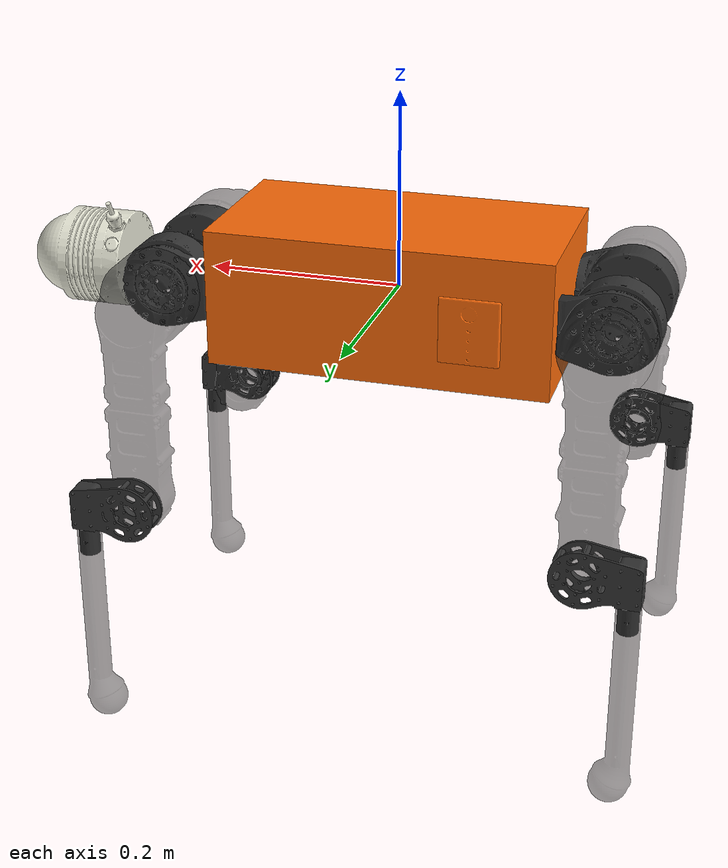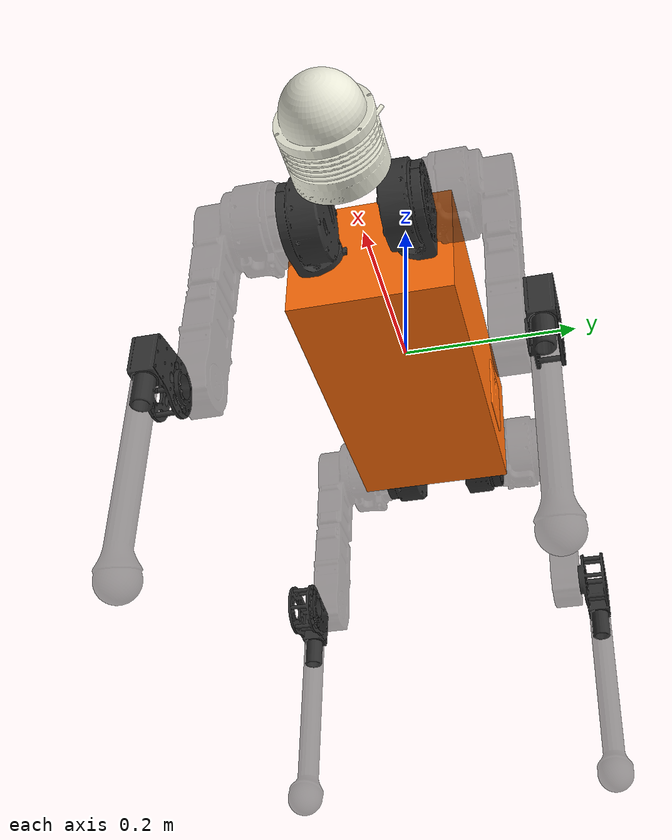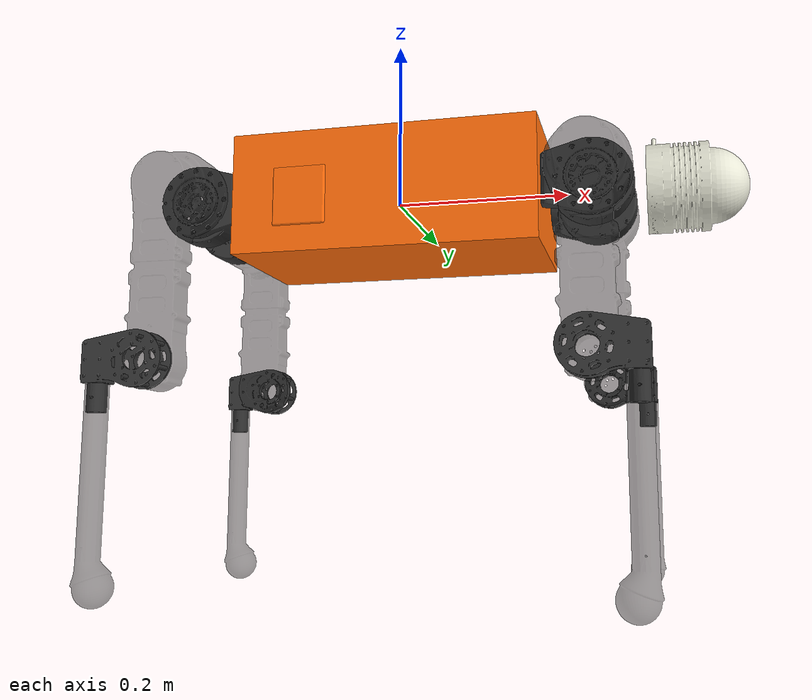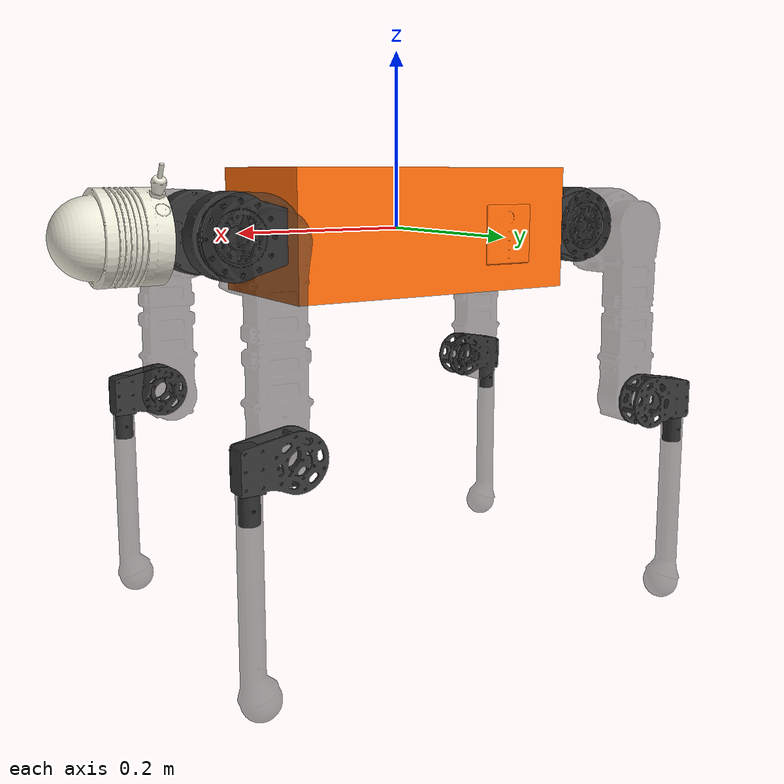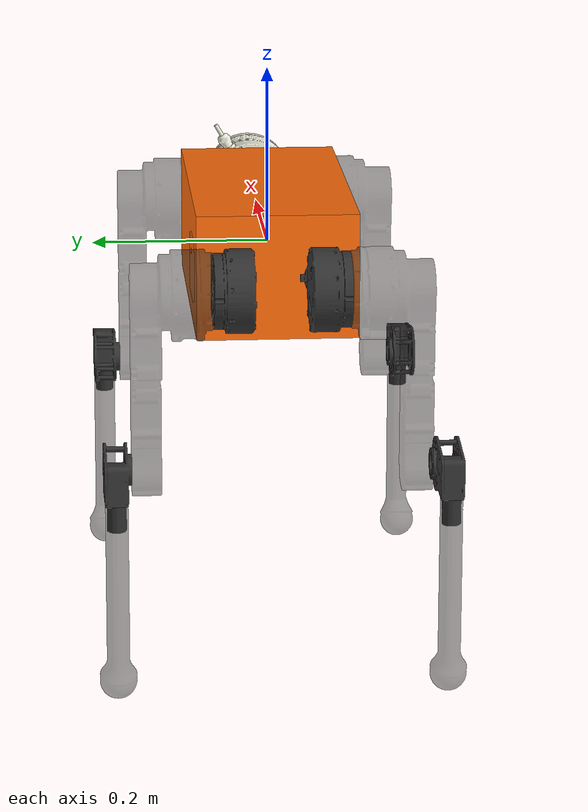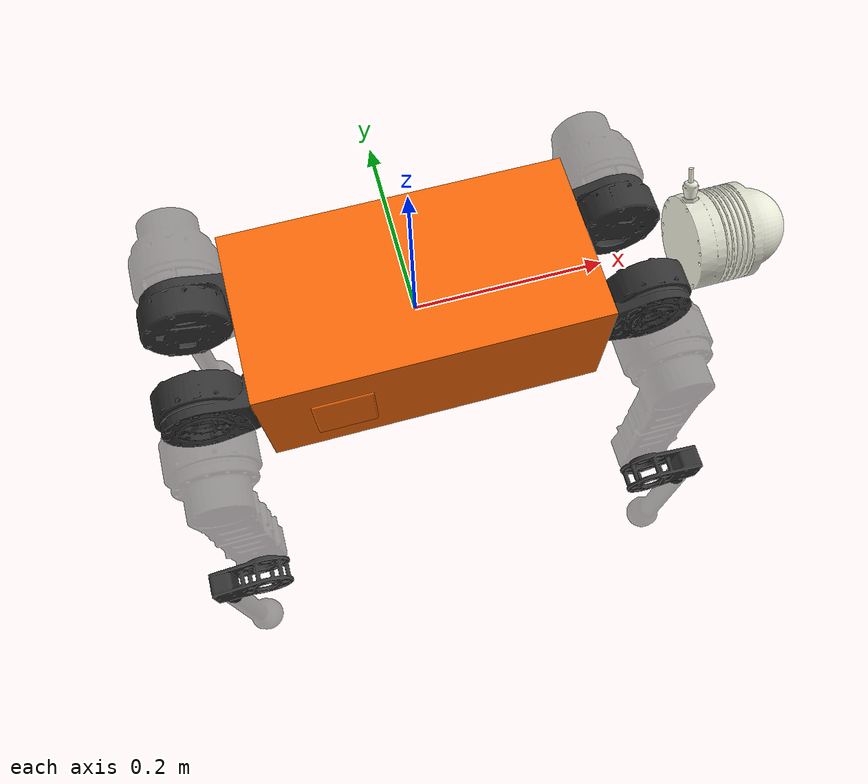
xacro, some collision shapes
<?xml version="1.0"?>

<robot xmlns:xacro="http://www.ros.org/wiki/xacro" name="robot">

    <xacro:arg name="robot_type" default="freeAny"/>

    <xacro:include filename="$(find freeAny_description)/common/materials.xacro"/>
    <xacro:include filename="$(find freeAny_description)/common/leg.xacro"/>
    <xacro:include filename="$(find freeAny_description)/common/gazebo.xacro"/>
    <xacro:include filename="$(find freeAny_description)/common/imu.xacro"/>
    <xacro:include filename="$(find freeAny_description)/common/BP_lidar.xacro"/>
    <xacro:include filename="$(find freeAny_description)/common/camera.xacro"/>

    <xacro:include filename="$(find freeAny_description)/urdf/const.xacro"/>

    <link name="base">
        <visual>
            <origin rpy="0 0 0" xyz="0 0 0"/>
            <geometry>
                <mesh filename="package://freeAny_description/meshes/base.STL" scale="1 1 1"/>
            </geometry>
            <material name = "orange" />
        </visual>
        <collision>
            <origin rpy="0 0 0" xyz="0 0 0"/>
            <geometry>
                <box size="${trunk_length} ${trunk_width} ${trunk_height}"/>
            </geometry>
        </collision>
        <inertial>
            <origin rpy="0 0 0" xyz="${trunk_com_x} ${trunk_com_y} ${trunk_com_z}"/>
            <mass value="${trunk_mass}"/>
            <inertia
                    ixx="${trunk_ixx}" ixy="${trunk_ixy}" ixz="${trunk_ixz}"
                    iyy="${trunk_iyy}" iyz="${trunk_iyz}"
                    izz="${trunk_izz}"/>
        </inertial>
    </link>

    <joint
        name="base_to_battery"
        type="fixed">
        <origin xyz="-0.0945 0 -0.006" rpy="0 0 0" />
        <parent link="base" />
        <child link="battery" />
        <axis xyz="0 0 0" />
    </joint>
    <gazebo reference="base_to_battery">
            <disableFixedJointLumping>true</disableFixedJointLumping>
    </gazebo>
    <link name="battery">
        <inertial>
        <origin xyz="0 4.0915E-05 3.0102E-05" rpy="0 0 0" />
        <mass value="1.47" />
        <inertia
            ixx="0.004712212" ixy="-1.6E-08" ixz="-8.0E-09"
            iyy="0.001037398" iyz="3.622E-06"
            izz="0.004615705" />
        </inertial>
        <visual>
        <origin xyz="0 0 0" rpy="0 0 0" />
        <geometry>
            <mesh
            filename="package://freeAny_description/meshes/battery.STL" />
        </geometry>
        <material name="orange"/>
        </visual>
    </link>

    <xacro:IMU connected_to="base" imu_name="yesense_imu" xyz="0.12095 0 -0.0335" rpy="0. 0. 0."/>
    <xacro:LiDAR connected_to="base" lidar_name="BP_lidar" xyz="0.38227 0 0" rpy="-1.5708 1.0472 -1.5708"/>
    <xacro:Camera connected_to="base" camera_name="realsense_camera" xyz="0.4 0 0.15" rpy="0 0.6 0"/>

    <gazebo reference="camera_rgb_frame">
            <sensor type="depth" name="realsense_R200">
            <always_on>true</always_on>
            <visualize>false</visualize>
            <camera>
                <horizontal_fov>1.3439</horizontal_fov>
                <image>
                    <width>1920</width>
                    <height>1080</height>
                    <format>R8G8B8</format>
                </image>
                <depth_camera></depth_camera>
                <clip>
                    <near>0.03</near>
                    <far>100</far>
                </clip>
            </camera>
            <plugin name="camera_controller" filename="libgazebo_ros_openni_kinect.so">
                <baseline>0.2</baseline>
                <alwaysOn>true</alwaysOn>
                <updateRate>30.0</updateRate>
                <cameraName>camera</cameraName>
                <frameName>camera_rgb_optical_frame</frameName>
                <imageTopicName>rgb/image_raw</imageTopicName>
                <depthImageTopicName>depth/image_raw</depthImageTopicName>
                <pointCloudTopicName>depth/points</pointCloudTopicName>
                <cameraInfoTopicName>rgb/camera_info</cameraInfoTopicName>
                <depthImageCameraInfoTopicName>depth/camera_info</depthImageCameraInfoTopicName>
                <pointCloudCutoff>0.4</pointCloudCutoff>
                    <hackBaseline>0.07</hackBaseline>
                    <distortionK1>0.0</distortionK1>
                    <distortionK2>0.0</distortionK2>
                    <distortionK3>0.0</distortionK3>
                    <distortionT1>0.0</distortionT1>
                    <distortionT2>0.0</distortionT2>
                <CxPrime>0.0</CxPrime>
                <Cx>0.0</Cx>
                <Cy>0.0</Cy>
                <focalLength>0</focalLength>
                <hackBaseline>0</hackBaseline>
            </plugin>
            </sensor>
        </gazebo>

    <!-- lr_val = 1(left)/-1(right) fh_val = 1(front)/-1(hind) -->

    <xacro:leg prefix="LF" lr_val="1" left_right="True" fh_val="1" front_hind="True">
        <origin rpy="0 0 0" xyz="${leg_offset_x} ${leg_offset_y} 0"/>
    </xacro:leg>

    <xacro:leg prefix="RF" lr_val="-1" left_right="False" fh_val="1" front_hind="True">
        <origin rpy="0 0 0" xyz="${leg_offset_x} ${-leg_offset_y} 0"/>
    </xacro:leg>

    <xacro:leg prefix="LH" lr_val="1" left_right="True" fh_val="-1" front_hind="False">
        <origin rpy="0 0 0" xyz="${-leg_offset_x} ${leg_offset_y} 0"/>
    </xacro:leg>

    <xacro:leg prefix="RH" lr_val="-1" left_right="False" fh_val="-1" front_hind="False">
        <origin rpy="0 0 0" xyz="${-leg_offset_x} ${-leg_offset_y} 0"/>
    </xacro:leg>

</robot>

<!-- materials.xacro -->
<robot>

    <material name="black">
        <color rgba="0.0 0.0 0.0 1.0"/>
    </material>

    <material name="blue">
        <color rgba="0.0 0.0 0.8 1.0"/>
    </material>

    <material name="green">
        <color rgba="0.0 0.8 0.0 1.0"/>
    </material>

    <material name="grey">
        <color rgba="0.2 0.2 0.2 1.0"/>
    </material>

    <material name="grey_alpha">
        <color rgba="0.2 0.2 0.2 0.5"/>
    </material>

    <material name="silver">
        <color rgba="${233/255} ${233/255} ${216/255} 1.0"/>
    </material>

    <material name="orange">
        <color rgba="${255/255} ${108/255} ${10/255} 1.0"/>
    </material>

    <material name="orange_alpha">
        <color rgba="${255/255} ${108/255} ${10/255} 0.85"/>
    </material>

    <material name="brown">
        <color rgba="${222/255} ${207/255} ${195/255} 1.0"/>
    </material>

    <material name="red">
        <color rgba="0.8 0.0 0.0 1.0"/>
    </material>

    <material name="white">
        <color rgba="1.0 1.0 1.0 1.0"/>
    </material>

</robot>

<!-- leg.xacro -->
<robot xmlns:xacro="http://www.ros.org/wiki/xacro">

    <xacro:include filename="$(find freeAny_description)/common/transmission.xacro"/>
    <!-- lr_val = 1(left)/-1(right) fh_val = 1(front)/-1(hind) -->
    <xacro:macro name="leg" params="prefix lr_val left_right fh_val front_hind *origin">

        <joint name="${prefix}_HAA" type="revolute">
            <xacro:insert_block name="origin"/>
            <parent link="base"/>
            <child link="${prefix}_HIP"/>
            <axis xyz="1 0 0"/>
            <dynamics damping="${damping}" friction="${friction}"/>
            <xacro:if value="${(left_right == True)}">
                <limit effort="${hip_torque_max}" velocity="${hip_velocity_max}" lower="${hip_min}"
                       upper="${hip_max}"/>
            </xacro:if>
            <xacro:if value="${(left_right == False)}">
                <limit effort="${hip_torque_max}" velocity="${hip_velocity_max}" lower="${-hip_max}"
                       upper="${-hip_min}"/>
            </xacro:if>
        </joint>

        <link name="${prefix}_HIP">
            <visual>
                <xacro:if value="${(left_right == True) and (front_hind == True)}">
                    <origin rpy="0 0 0" xyz="0 0 0"/>
                </xacro:if>
                <xacro:if value="${(left_right == False) and (front_hind == True)}">
                    <origin rpy="${pi} 0 0" xyz="0 0 0"/>
                </xacro:if>
                <xacro:if value="${(left_right == True) and (front_hind == False)}">
                    <origin rpy="0 ${pi} 0" xyz="0 0 0"/>
                </xacro:if>
                <xacro:if value="${(left_right == False) and (front_hind == False)}">
                    <origin rpy="0 0 ${pi}" xyz="0 0 0"/>
                </xacro:if>
                <geometry>
                    <mesh filename="package://freeAny_description/meshes/HIP.STL" scale="1 1 1"/>
                </geometry>
                <material name="grey"/>
            </visual>
            <collision>
                <origin rpy="${pi/2.0} 0 0" xyz="0.0541 0 0"/>
                <geometry>
                    <cylinder length="${hip_length}" radius="${hip_radius}"/>
                </geometry>
            </collision>
            <inertial>
                <origin rpy="0 0 0" xyz="${fh_val*hip_com_x} ${lr_val*hip_com_y} ${hip_com_z}"/>
                <mass value="${hip_mass}"/>
                <inertia
                    ixx="${hip_ixx}" ixy="${fh_val*hip_ixy*lr_val}" ixz="${fh_val*hip_ixz}"
                    iyy="${hip_iyy}" iyz="${lr_val*hip_iyz}"
                    izz="${hip_izz}"/>
            </inertial>
        </link>

        <joint name="${prefix}_HIPFix" type="fixed">
            <origin rpy="0 0 0" xyz="${fh_val*0.08} ${lr_val*0.04} 0"/>
            <parent link="${prefix}_HIP"/>
            <child link="${prefix}_HIPFixed"/>
        </joint>

        <link name="${prefix}_HIPFixed">
            <inertial>
                <origin rpy="0 0 0" xyz="0 0 0"/>
                <mass value="0.000001"/>
                <inertia
                    ixx="0.00000001" ixy="0" ixz="0"
                    iyy="0.00000001" iyz="0"
                    izz="0.00000001"/>
            </inertial>
        </link>

        <joint name="${prefix}_HFE" type="revolute">
            <origin rpy="0 0 ${pi/2.0}" xyz="${fh_val*thigh_x_offset} ${lr_val*thigh_y_offset} 0"/>
            <parent link="${prefix}_HIP"/>
            <child link="${prefix}_THIGH"/>
            <axis xyz="1 0 0"/>
            <dynamics damping="${damping}" friction="${friction}"/>
            <xacro:if value="${(left_right == True)}">
                <limit effort="${thigh_torque_max}" velocity="${thigh_velocity_max}" lower="${thigh_min}"
                       upper="${thigh_max}"/>
            </xacro:if>
            <xacro:if value="${(left_right == False)}">
                <limit effort="${hip_torque_max}" velocity="${hip_velocity_max}" lower="${-thigh_max}"
                       upper="${-thigh_min}"/>
            </xacro:if>
        </joint>

        <link name="${prefix}_THIGH">
            <visual>
                <xacro:if value="${(left_right == True)}">
                    <origin rpy="0 0 0" xyz="0 0 0"/>
                </xacro:if>
                <xacro:if value="${(left_right == False)}">
                    <origin rpy="0 0 ${pi}" xyz="0 0 0"/>
                </xacro:if>
                <geometry>
                    <mesh filename="package://freeAny_description/meshes/thigh.STL" scale="1 1 1"/>
                </geometry>
                <material name="grey_alpha"/>
            </visual>
            <collision>
                <origin rpy="0 ${pi/2.0} 0" xyz="${-lr_val*0.01} 0 0"/>
                <geometry>
                    <cylinder length="${thigh_shoulder_length}" radius="${thigh_shoulder_radius}"/>
                </geometry>
            </collision>
            <collision>
                <origin rpy="0 0 0" xyz="0 0 ${-thigh_length/2.0}"/>
                <geometry>
                    <box size="${thigh_height} ${thigh_width} ${thigh_length}"/>
                </geometry>
            </collision>
            <inertial>
                <origin rpy="0 0 0" xyz="${lr_val*thigh_com_x} ${lr_val*thigh_com_y} ${thigh_com_z}"/>
                <mass value="${thigh_mass}"/>
                <inertia
                        ixx="${thigh_ixx}" ixy="${thigh_ixy}" ixz="${thigh_ixz*lr_val}"
                        iyy="${thigh_iyy}" iyz="${thigh_iyz*lr_val}"
                        izz="${thigh_izz}"/>
            </inertial>
        </link>

        <joint name="${prefix}_KFE" type="revolute">
            <origin rpy="0 0 0" xyz="${lr_val*shank_x_offset} 0 ${-thigh_length}"/>
            <parent link="${prefix}_THIGH"/>
            <child link="${prefix}_SHANK"/>
            <axis xyz="1 0 0"/>
            <dynamics damping="${damping}" friction="${friction}"/>
            <limit effort="${shank_torque_max}" velocity="${shank_velocity_max}" lower="${shank_min}" upper="${shank_max}"/>
        </joint>

        <link name="${prefix}_SHANK">
            <visual>
                <xacro:if value="${(left_right == True) and (front_hind == True)}">
                    <origin rpy="0 0 0" xyz="0 0 0"/>
                    <geometry>
                        <mesh filename="package://freeAny_description/meshes/shank_Left.STL" scale="1 1 1"/>
                    </geometry>
                </xacro:if>
                <xacro:if value="${(left_right == False) and (front_hind == False)}">
                    <origin rpy="0 0 ${pi}" xyz="0 0 0"/>
                    <geometry>
                        <mesh filename="package://freeAny_description/meshes/shank_Left.STL" scale="1 1 1"/>
                    </geometry>
                </xacro:if>
                <xacro:if value="${(left_right == False) and (front_hind == True)}">
                    <origin rpy="0 0 0" xyz="0 0 0"/>
                    <geometry>
                        <mesh filename="package://freeAny_description/meshes/shank_Right.STL" scale="1 1 1"/>
                    </geometry>
                </xacro:if>
                <xacro:if value="${(left_right == True) and (front_hind == False)}">
                    <origin rpy="0 0 ${pi}" xyz="0 0 0"/>
                    <geometry>
                        <mesh filename="package://freeAny_description/meshes/shank_Right.STL" scale="1 1 1"/>
                    </geometry>
                </xacro:if>
                <material name="grey"/>
            </visual>
            <collision>
                <origin rpy="0 0 0" xyz="0 ${-fh_val*0.048} 0"/>
                <geometry>
                    <box size="${shank_length} ${shank_width} ${shank_height}"/>
                </geometry>
            </collision>
            <collision>
                <origin rpy="0 ${pi/2} 0" xyz="0 0 0"/>
                <geometry>
                    <cylinder length="${shank_thickness}" radius="${shank_radius}"/>
                </geometry>
            </collision>
            <inertial>
                <origin rpy="0 0 0" xyz="${lr_val*shank_com_x} ${fh_val*shank_com_y} ${shank_com_z}"/>
                <mass value="${shank_mass}"/>
                <inertia
                        ixx="${shank_ixx}" ixy="${lr_val*fh_val*shank_ixy}" ixz="${lr_val*shank_ixz}"
                        iyy="${shank_iyy}" iyz="${fh_val*shank_iyz}"
                        izz="${shank_izz}"/>
            </inertial>
        </link>

        <joint name="shank_to_foot_${prefix}" type="fixed">
            <origin rpy="0 0 ${-pi/2}" xyz="0 ${-(fh_val*0.031301)} -0.24819"/>
            <parent link="${prefix}_SHANK"/>
            <child link="${prefix}_FOOT"/>
        </joint>

        <link name="${prefix}_FOOT">
            <visual>
                <xacro:if value="${(front_hind == True)}">
                    <origin rpy="0 0 0" xyz="0 0 0"/>
                </xacro:if>
                <xacro:if value="${(front_hind == False)}">
                    <origin rpy="0 0 ${pi}" xyz="0 0 0"/>
                </xacro:if>
                <geometry>
                        <mesh filename="package://freeAny_description/meshes/foot.STL" scale="1 1 1"/>
                </geometry>
                <material name="grey_alpha"/>
            </visual>
            <collision>
                <origin rpy="0 0 0" xyz="${0.008*fh_val} 0 0.017"/>
                <geometry>
                    <sphere radius="${foot_radius}"/>
                </geometry>
            </collision>
            <collision>
                <origin rpy="0 0 0" xyz="${0.016*fh_val} 0 ${foot_length*0.625}"/>
                <geometry>
                    <cylinder length="${foot_length}" radius="${foot_radius*0.6}"/>
                </geometry>
            </collision>
            <inertial>
                <origin rpy="0 0 0" xyz="${fh_val*foot_com_x} ${foot_com_y} ${foot_com_z}"/>
                <mass value="${foot_mass}"/>
                <inertia
                        ixx="${foot_ixx}" ixy="${fh_val*foot_ixy}" ixz="${fh_val*foot_ixz}"
                        iyy="${foot_iyy}" iyz="${foot_iyz}"
                        izz="${foot_izz}"/>
            </inertial>
        </link>

        <gazebo reference="shank_to_foot_${prefix}">
            <disableFixedJointLumping>true</disableFixedJointLumping>
        </gazebo>

        <xacro:leg_transmission name="${prefix}"/>
    </xacro:macro>
</robot>

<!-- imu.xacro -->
<robot xmlns:xacro="http://www.ros.org/wiki/xacro" name="imu">
    <xacro:macro name="IMU" params="connected_to imu_name xyz:='0 0 0' rpy:='0 0 0' ">
        <!-- Imu is fixed to the base link -->
        <joint name="${imu_name}_joint" type="fixed">
            <origin xyz="${xyz}" rpy="${rpy}"/>
            <parent link="${connected_to}"/>
            <child link="${imu_name}"/>
        </joint>
        <!-- Imu link -->
        <link name="${imu_name}">
            <inertial>
                <mass value="0.03"/>
                <origin xyz="0 0 -0.0072335" rpy="0 0 0" />
                <inertia ixx="4.013E-06" ixy="0" ixz="-1.5E-08" iyy="6.158E-06" iyz="-2.0E-09" izz="6.061E-06" />
            </inertial>
            <visual>
                <origin rpy="0 0 0" xyz="0 0 0"/>
                <geometry>
                    <mesh filename="package://freeAny_description/meshes/IMU.STL" />
                </geometry>
            </visual>
            <material name="orange">
                <color rgba="255 108 10 255"/>
            </material>
        </link>
        <gazebo reference="${imu_name}">
            <material>Gazebo/Orange</material>
        </gazebo>
        <gazebo reference="${imu_name}_joint">
            <disableFixedJointLumping>true</disableFixedJointLumping>
        </gazebo>
    </xacro:macro>
</robot>

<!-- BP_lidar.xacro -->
<robot xmlns:xacro="http://www.ros.org/wiki/xacro" name="laser_ldiar">
    <xacro:macro name="LiDAR" params="connected_to lidar_name xyz:='0 0 0' rpy:='0 0 0' ">
        <!-- lidar is fixed to the base link -->
        <joint name="base_to_${lidar_name}_joint" type="fixed">
            <origin xyz="${xyz}" rpy="${rpy}"/>
            <parent link="${connected_to}"/>
            <child link="${lidar_name}"/>
        </joint>
        <!-- lidar link -->
        <link name="${lidar_name}">
            <inertial>
                <mass value="1.0"/>
                <origin xyz="-0.00092658 3.0E-05 -0.058804" rpy="0 0 0" />
                <inertia ixx="0.005077876" ixy="1.493E-06" ixz="7.8943E-05" iyy="0.005133860" iyz="-2.922E-06" izz="0.001777821" />
            </inertial>
            <visual>
                <origin rpy="0 0 0" xyz="0 0 0"/>
                <geometry>
                    <mesh filename="package://freeAny_description/meshes/BP_lidar.STL" />
                </geometry>
                <material name = "silver" />
            </visual>
        </link>

        <gazebo reference="base_to_${lidar_name}_joint">
            <disableFixedJointLumping>true</disableFixedJointLumping>
        </gazebo>
    </xacro:macro>
</robot>

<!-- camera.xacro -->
<robot xmlns:xacro="http://www.ros.org/wiki/xacro" name="camera_freeany">
    <xacro:macro name="Camera" params="connected_to camera_name xyz:='0 0 0' rpy:='0 0 0' ">
        <!-- lidar is fixed to the base link -->

        <joint name="base_to_${camera_name}_joint" type="fixed">
            <origin xyz="${xyz}" rpy="${rpy}"/>
            <parent link="${connected_to}"/>
            <child link="${camera_name}"/>
        </joint>
        <!-- lidar link -->
        <link name="${camera_name}">
            <inertial>
                <mass value="0.01"/>
                <origin xyz="0 0 0" rpy="0 0 0" />
                <inertia ixx="0.0000001" ixy="0" ixz="0" iyy="0.0000001" iyz="0" izz="0.0000001" />
            </inertial>

        </link>

         <joint name="camera_rgb_joint" type="fixed">
            <origin xyz="0.005 0.018 0.013" rpy="0 0 0"/>
            <parent link="${camera_name}"/>
            <child link="camera_rgb_frame"/>
        </joint>

        <link name="camera_rgb_frame">
            <inertial>
                <mass value="0.01"/>
                <origin xyz="0 0 0" rpy="0 0 0" />
                <inertia ixx="0.0000001" ixy="0" ixz="0" iyy="0.0000001" iyz="0" izz="0.0000001" />
            </inertial>
        </link>

        <joint name="camera_rgb_optical_joint" type="fixed">
            <origin xyz="0 0 0" rpy="-1.57 0 -1.57"/>
            <parent link="camera_rgb_frame"/>
            <child link="camera_rgb_optical_frame"/>
        </joint>
        <link name="camera_rgb_optical_frame"/>

        <joint name="camera_depth_joint" type="fixed">
            <origin xyz="0.005 0.028 0.013" rpy="0 0 0"/>
            <parent link="${camera_name}"/>
            <child link="camera_depth_frame"/>
        </joint>
        <link name="camera_depth_frame"/>

        <joint name="camera_depth_optical_joint" type="fixed">
            <origin xyz="0 0 0" rpy="-1.57 0 -1.57"/>
            <parent link="camera_depth_frame"/>
            <child link="camera_depth_optical_frame"/>
        </joint>
        <link name="camera_depth_optical_frame"/>

        <gazebo reference="base_to_${camera_name}_joint">
            <disableFixedJointLumping>true</disableFixedJointLumping>
        </gazebo>

    </xacro:macro>
</robot>

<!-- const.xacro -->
<robot xmlns:xacro="http://www.ros.org/wiki/xacro" name="freeAny_description">

    <!-- simplified collision value -->
    <xacro:property name="trunk_width" value="0.18"/>
    <xacro:property name="trunk_length" value="0.3504"/>
    <xacro:property name="trunk_height" value="0.14"/>

    <xacro:property name="hip_radius" value="0.046"/>
    <xacro:property name="hip_length" value="0.04"/>

    <xacro:property name="thigh_shoulder_radius" value="0.032"/>
    <xacro:property name="thigh_shoulder_length" value="0.041"/>
    <xacro:property name="thigh_width" value="0.048"/>
    <xacro:property name="thigh_height" value="0.032"/>

    <xacro:property name="shank_width"  value="0.02"/>
    <xacro:property name="shank_length" value="0.03"/>
    <xacro:property name="shank_height" value="0.045"/>
    <xacro:property name="shank_radius" value="0.029"/>
    <xacro:property name="shank_thickness" value="0.03"/>

    <xacro:property name="foot_length"   value="0.21"/>
    <xacro:property name="foot_radius" value="0.02"/>

    <xacro:property name="stick_radius" value="0.01"/>
    <xacro:property name="stick_length" value="0.2"/>

    <!-- kinematic value -->
    <xacro:property name="thigh_x_offset" value="0.0541"/>
    <xacro:property name="thigh_y_offset" value="0.09355"/>
    <xacro:property name="thigh_length"   value="0.2"/>
    <xacro:property name="shank_x_offset" value="0.034"/>

    <!-- leg offset from trunk center value -->
    <xacro:property name="leg_offset_x" value="0.1756"/>
    <xacro:property name="leg_offset_y" value="0.055"/>
    <xacro:property name="trunk_offset_z" value="0.01675"/>
    <xacro:property name="hip_offset" value="0.065"/>

    <!-- joint limits -->
    <xacro:property name="damping" value="0"/>
    <xacro:property name="friction" value="0"/>
    <xacro:property name="hip_max" value="${46*pi/180.0}"/>
    <xacro:property name="hip_min" value="${-46*pi/180.0}"/>
    <xacro:property name="hip_velocity_max" value="21"/>
    <xacro:property name="hip_torque_max" value="33.5"/>
    <xacro:property name="thigh_max" value="${240*pi/180.0}"/>
    <xacro:property name="thigh_min" value="${-80*pi/180.0}"/>
    <xacro:property name="thigh_velocity_max" value="21"/>
    <xacro:property name="thigh_torque_max" value="33.5"/>
    <xacro:property name="shank_max" value="${180*pi/180.0}"/>
    <xacro:property name="shank_min" value="${-180*pi/180.0}"/>
    <xacro:property name="shank_velocity_max" value="13"/>
    <xacro:property name="shank_torque_max" value="52"/>

    <!-- dynamics inertial value -->
    <!-- trunk -->
    <!--    base+imu+battery+lidar = 7.21Kg-->
    <xacro:property name="trunk_mass"  value="4.71"/>
    <xacro:property name="trunk_com_x" value="0.0036585"/>
    <xacro:property name="trunk_com_y" value="0.000"/>
    <xacro:property name="trunk_com_z" value="-0.0077332"/>
    <xacro:property name="trunk_ixx" value="0.02327755"/>
    <xacro:property name="trunk_ixy" value="0.000033511"/>
    <xacro:property name="trunk_ixz" value="0.000186233"/>
    <xacro:property name="trunk_iyy" value="0.126017746"/>
    <xacro:property name="trunk_iyz" value="-0.000014056"/>
    <xacro:property name="trunk_izz" value="0.133811568"/>

    <!-- hip (left front) -->
    <xacro:property name="hip_mass"  value="0.715"/>
    <xacro:property name="hip_com_x" value="0.042659"/>
    <xacro:property name="hip_com_y" value="0.0034843"/>
    <xacro:property name="hip_com_z" value="-0.00035303"/>
    <xacro:property name="hip_ixx" value="0.000546211"/>
    <xacro:property name="hip_ixy" value="0.000114344"/>
    <xacro:property name="hip_ixz" value="-1.0737E-05"/>
    <xacro:property name="hip_iyy" value="0.002324487"/>
    <xacro:property name="hip_iyz" value="3.2554E-05"/>
    <xacro:property name="hip_izz" value="0.002086762"/>

    <!-- thigh -->
    <xacro:property name="thigh_mass"  value="1.15"/>
    <xacro:property name="thigh_com_x" value="-0.018971"/>
    <xacro:property name="thigh_com_y" value="-0.000100"/>
    <xacro:property name="thigh_com_z" value="-0.072708"/>
    <xacro:property name="thigh_ixx" value="0.014724523"/>
    <xacro:property name="thigh_ixy" value="5.677E-06"/>
    <xacro:property name="thigh_ixz" value="6.2711E-05"/>
    <xacro:property name="thigh_iyy" value="0.015466921"/>
    <xacro:property name="thigh_iyz" value="7.296E-06"/>
    <xacro:property name="thigh_izz" value="0.001822592"/>

    <!-- shank -->
    <xacro:property name="shank_mass"  value="0.085"/>
    <xacro:property name="shank_com_x" value="-0.000781"/>
    <xacro:property name="shank_com_y" value="-0.029499"/>
    <xacro:property name="shank_com_z" value="-0.004542"/>
    <xacro:property name="shank_ixx" value="0.000156178"/>
    <xacro:property name="shank_ixy" value="0.0"/>
    <xacro:property name="shank_ixz" value="0.0"/>
    <xacro:property name="shank_iyy" value="3.8653E-05"/>
    <xacro:property name="shank_iyz" value="1.8611E-05"/>
    <xacro:property name="shank_izz" value="0.000133207"/>

    <!-- foot -->
    <xacro:property name="foot_mass"  value="0.077"/>
    <xacro:property name="foot_com_x" value="0.012"/>
    <xacro:property name="foot_com_y" value="0"/>
    <xacro:property name="foot_com_z" value="0.065"/>
    <xacro:property name="foot_ixx" value="0.00629115"/>
    <xacro:property name="foot_ixy" value="0.0"/>
    <xacro:property name="foot_ixz" value="7.2557E-050"/>
    <xacro:property name="foot_iyy" value="0.000641223"/>
    <xacro:property name="foot_iyz" value="0"/>
    <xacro:property name="foot_izz" value="2.3963E-05"/>

</robot>
